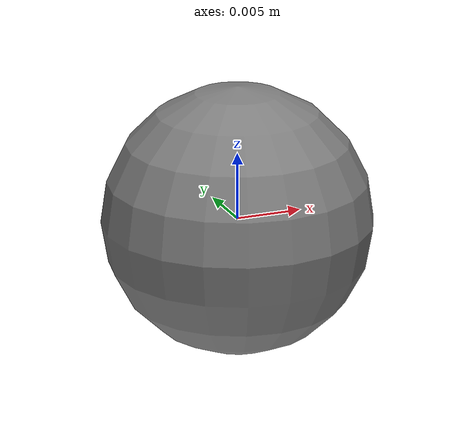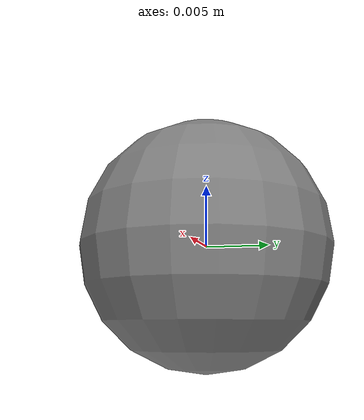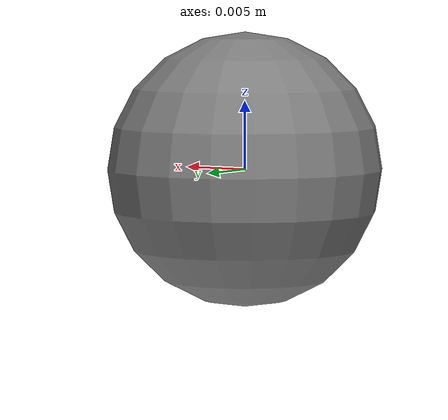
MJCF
<mujoco>
  <worldbody>
    <body name="Pelvis" pos="0 0 0">
      <geom name="Pelvis_geom" type="sphere" size="0.01"/>
      <body name="L_Hip" pos="0 0 0">
        <geom name="L_Hip_geom" type="sphere" size="0.01"/>
        <body name="L_Knee" pos="0 0 0">
          <geom name="L_Knee_geom" type="sphere" size="0.01"/>
          <body name="L_Ankle" pos="0 0 0">
            <geom name="L_Ankle_geom" type="sphere" size="0.01"/>
            <body name="L_Toe" pos="0 0 0">
              <geom name="L_Toe_geom" type="sphere" size="0.01"/>
            </body>
          </body>
        </body>
      </body>
      <body name="R_Hip" pos="0 0 0">
        <geom name="R_Hip_geom" type="sphere" size="0.01"/>
        <body name="R_Knee" pos="0 0 0">
          <geom name="R_Knee_geom" type="sphere" size="0.01"/>
          <body name="R_Ankle" pos="0 0 0">
            <geom name="R_Ankle_geom" type="sphere" size="0.01"/>
            <body name="R_Toe" pos="0 0 0">
              <geom name="R_Toe_geom" type="sphere" size="0.01"/>
            </body>
          </body>
        </body>
      </body>
      <body name="Torso" pos="0 0 0">
        <geom name="Torso_geom" type="sphere" size="0.01"/>
        <body name="Spine" pos="0 0 0">
          <geom name="Spine_geom" type="sphere" size="0.01"/>
          <body name="Chest" pos="0 0 0">
            <geom name="Chest_geom" type="sphere" size="0.01"/>
            <body name="Neck" pos="0 0 0">
              <geom name="Neck_geom" type="sphere" size="0.01"/>
              <body name="Head" pos="0 0 0">
                <geom name="Head_geom" type="sphere" size="0.01"/>
              </body>
            </body>
            <body name="L_Thorax" pos="0 0 0">
              <geom name="L_Thorax_geom" type="sphere" size="0.01"/>
              <body name="L_Shoulder" pos="0 0 0">
                <geom name="L_Shoulder_geom" type="sphere" size="0.01"/>
                <body name="L_Elbow" pos="0 0 0">
                  <geom name="L_Elbow_geom" type="sphere" size="0.01"/>
                  <body name="L_Wrist" pos="0 0 0">
                    <geom name="L_Wrist_geom" type="sphere" size="0.01"/>
                    <body name="L_Hand" pos="0 0 0">
                      <geom name="L_Hand_geom" type="sphere" size="0.01"/>
                    </body>
                  </body>
                </body>
              </body>
            </body>
            <body name="R_Thorax" pos="0 0 0">
              <geom name="R_Thorax_geom" type="sphere" size="0.01"/>
              <body name="R_Shoulder" pos="0 0 0">
                <geom name="R_Shoulder_geom" type="sphere" size="0.01"/>
                <body name="R_Elbow" pos="0 0 0">
                  <geom name="R_Elbow_geom" type="sphere" size="0.01"/>
                  <body name="R_Wrist" pos="0 0 0">
                    <geom name="R_Wrist_geom" type="sphere" size="0.01"/>
                    <body name="R_Hand" pos="0 0 0">
                      <geom name="R_Hand_geom" type="sphere" size="0.01"/>
                    </body>
                  </body>
                </body>
              </body>
            </body>
          </body>
        </body>
      </body>
    </body>
  </worldbody>
</mujoco>
